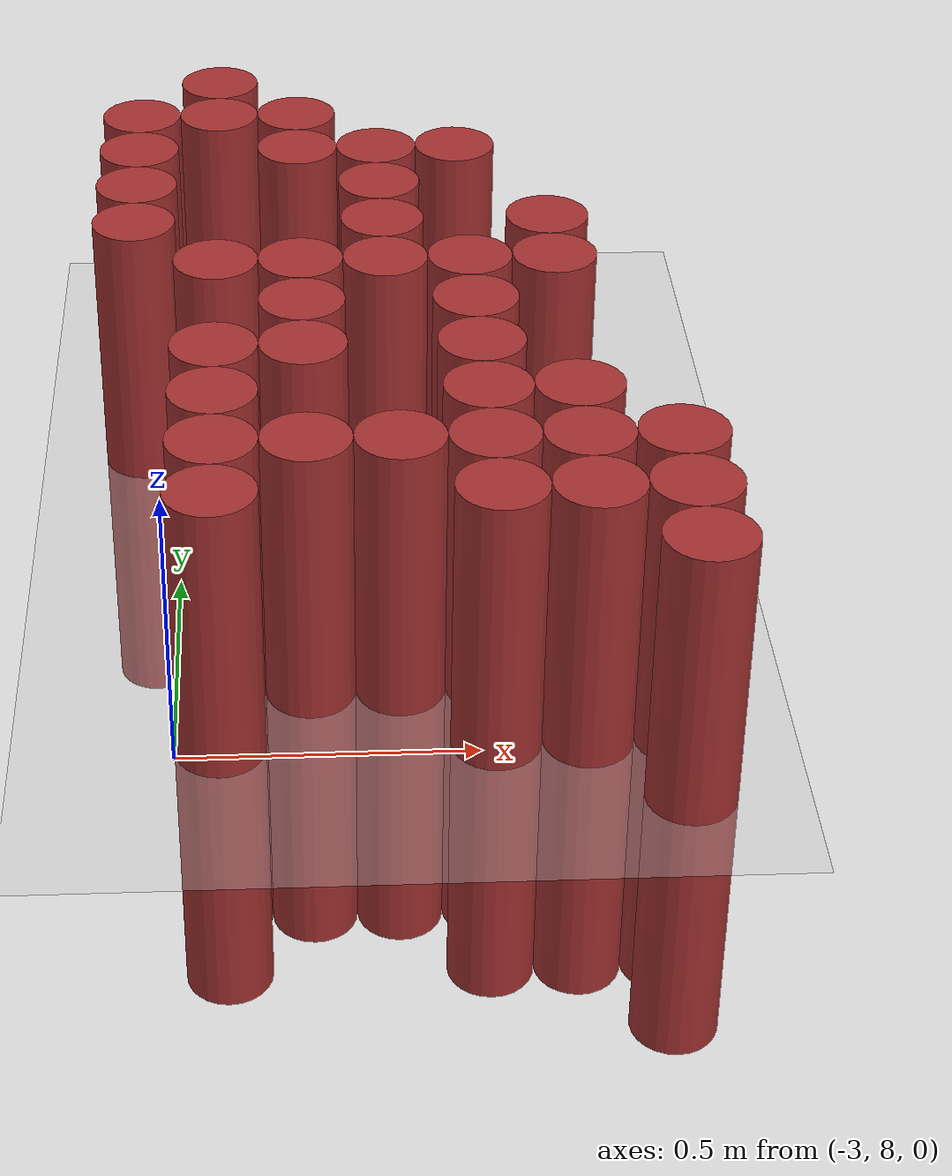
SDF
<sdf version="1.6">
 <world name="default">
  <model name="ground_plane">
   <static>1</static>
   <link name="link">
    <collision name="collision">
     <geometry><plane><normal>0 0 1</normal><size>100 100</size></plane></geometry>
     <surface><friction><ode><mu>100</mu><mu2>50</mu2></ode></friction></surface>
    </collision>
    <visual name="visual">
     <cast_shadows>0</cast_shadows>
     <geometry><plane><normal>0 0 1</normal><size>100 100</size></plane></geometry>
     <material>
      <script><uri>file://media/materials/scripts/gazebo.material</uri><name>Gazebo/Grey</name></script>
     </material>
    </visual>
   </link>
  </model>
  <model name="unit_cylinder_192">
   <static>1</static>
   <pose>-3.075000 8.925000 0.000000 0.000000 0.000000 0.000000</pose>
   <link name="link">
    <inertial>
     <mass>1</mass>
     <inertia><ixx>0.145833</ixx><ixy>0</ixy><ixz>0</ixz><iyy>0.145833</iyy><iyz>0</iyz><izz>0.125</izz></inertia>
    </inertial>
    <collision name="collision">
     <geometry><cylinder><radius>0.075000</radius><length>1</length></cylinder></geometry>
    </collision>
    <visual name="visual">
     <geometry><cylinder><radius>0.075000</radius><length>1</length></cylinder></geometry>
     <material>
      <ambient>0.648000 0.192000 0.192000 1</ambient>
      <diffuse>0.648000 0.192000 0.192000 1</diffuse>
     </material>
     <material>
      <script><name>Gazebo/Grey</name><uri>file://media/materials/scripts/gazebo.material</uri></script>
     </material>
    </visual>
    <sensor name="sensor_contact" type="contact"><contact><collision>collision</collision></contact></sensor>
   </link>
   <plugin filename="gz-sim-touchplugin-system" name="gz::sim::systems::TouchPlugin">
    <target>robot</target>
    <namespace>robot</namespace>
    <time>0.001</time>
    <enabled>true</enabled>
   </plugin>
  </model>
  <model name="unit_cylinder_193">
   <static>1</static>
   <pose>-3.075000 9.075000 0.000000 0.000000 0.000000 0.000000</pose>
   <link name="link">
    <inertial>
     <mass>1</mass>
     <inertia><ixx>0.145833</ixx><ixy>0</ixy><ixz>0</ixz><iyy>0.145833</iyy><iyz>0</iyz><izz>0.125</izz></inertia>
    </inertial>
    <collision name="collision">
     <geometry><cylinder><radius>0.075000</radius><length>1</length></cylinder></geometry>
    </collision>
    <visual name="visual">
     <geometry><cylinder><radius>0.075000</radius><length>1</length></cylinder></geometry>
     <material>
      <ambient>0.648000 0.192000 0.192000 1</ambient>
      <diffuse>0.648000 0.192000 0.192000 1</diffuse>
     </material>
     <material>
      <script><name>Gazebo/Grey</name><uri>file://media/materials/scripts/gazebo.material</uri></script>
     </material>
    </visual>
    <sensor name="sensor_contact" type="contact"><contact><collision>collision</collision></contact></sensor>
   </link>
   <plugin filename="gz-sim-touchplugin-system" name="gz::sim::systems::TouchPlugin">
    <target>robot</target>
    <namespace>robot</namespace>
    <time>0.001</time>
    <enabled>true</enabled>
   </plugin>
  </model>
  <model name="unit_cylinder_194">
   <static>1</static>
   <pose>-3.075000 9.225000 0.000000 0.000000 0.000000 0.000000</pose>
   <link name="link">
    <inertial>
     <mass>1</mass>
     <inertia><ixx>0.145833</ixx><ixy>0</ixy><ixz>0</ixz><iyy>0.145833</iyy><iyz>0</iyz><izz>0.125</izz></inertia>
    </inertial>
    <collision name="collision">
     <geometry><cylinder><radius>0.075000</radius><length>1</length></cylinder></geometry>
    </collision>
    <visual name="visual">
     <geometry><cylinder><radius>0.075000</radius><length>1</length></cylinder></geometry>
     <material>
      <ambient>0.648000 0.192000 0.192000 1</ambient>
      <diffuse>0.648000 0.192000 0.192000 1</diffuse>
     </material>
     <material>
      <script><name>Gazebo/Grey</name><uri>file://media/materials/scripts/gazebo.material</uri></script>
     </material>
    </visual>
    <sensor name="sensor_contact" type="contact"><contact><collision>collision</collision></contact></sensor>
   </link>
   <plugin filename="gz-sim-touchplugin-system" name="gz::sim::systems::TouchPlugin">
    <target>robot</target>
    <namespace>robot</namespace>
    <time>0.001</time>
    <enabled>true</enabled>
   </plugin>
  </model>
  <model name="unit_cylinder_195">
   <static>1</static>
   <pose>-3.075000 9.375000 0.000000 0.000000 0.000000 0.000000</pose>
   <link name="link">
    <inertial>
     <mass>1</mass>
     <inertia><ixx>0.145833</ixx><ixy>0</ixy><ixz>0</ixz><iyy>0.145833</iyy><iyz>0</iyz><izz>0.125</izz></inertia>
    </inertial>
    <collision name="collision">
     <geometry><cylinder><radius>0.075000</radius><length>1</length></cylinder></geometry>
    </collision>
    <visual name="visual">
     <geometry><cylinder><radius>0.075000</radius><length>1</length></cylinder></geometry>
     <material>
      <ambient>0.648000 0.192000 0.192000 1</ambient>
      <diffuse>0.648000 0.192000 0.192000 1</diffuse>
     </material>
     <material>
      <script><name>Gazebo/Grey</name><uri>file://media/materials/scripts/gazebo.material</uri></script>
     </material>
    </visual>
    <sensor name="sensor_contact" type="contact"><contact><collision>collision</collision></contact></sensor>
   </link>
   <plugin filename="gz-sim-touchplugin-system" name="gz::sim::systems::TouchPlugin">
    <target>robot</target>
    <namespace>robot</namespace>
    <time>0.001</time>
    <enabled>true</enabled>
   </plugin>
  </model>
  <model name="unit_cylinder_199">
   <static>1</static>
   <pose>-2.925000 8.025000 0.000000 0.000000 0.000000 0.000000</pose>
   <link name="link">
    <inertial>
     <mass>1</mass>
     <inertia><ixx>0.145833</ixx><ixy>0</ixy><ixz>0</ixz><iyy>0.145833</iyy><iyz>0</iyz><izz>0.125</izz></inertia>
    </inertial>
    <collision name="collision">
     <geometry><cylinder><radius>0.075000</radius><length>1</length></cylinder></geometry>
    </collision>
    <visual name="visual">
     <geometry><cylinder><radius>0.075000</radius><length>1</length></cylinder></geometry>
     <material>
      <ambient>0.648000 0.192000 0.192000 1</ambient>
      <diffuse>0.648000 0.192000 0.192000 1</diffuse>
     </material>
     <material>
      <script><name>Gazebo/Grey</name><uri>file://media/materials/scripts/gazebo.material</uri></script>
     </material>
    </visual>
    <sensor name="sensor_contact" type="contact"><contact><collision>collision</collision></contact></sensor>
   </link>
   <plugin filename="gz-sim-touchplugin-system" name="gz::sim::systems::TouchPlugin">
    <target>robot</target>
    <namespace>robot</namespace>
    <time>0.001</time>
    <enabled>true</enabled>
   </plugin>
  </model>
  <model name="unit_cylinder_200">
   <static>1</static>
   <pose>-2.925000 8.175000 0.000000 0.000000 0.000000 0.000000</pose>
   <link name="link">
    <inertial>
     <mass>1</mass>
     <inertia><ixx>0.145833</ixx><ixy>0</ixy><ixz>0</ixz><iyy>0.145833</iyy><iyz>0</iyz><izz>0.125</izz></inertia>
    </inertial>
    <collision name="collision">
     <geometry><cylinder><radius>0.075000</radius><length>1</length></cylinder></geometry>
    </collision>
    <visual name="visual">
     <geometry><cylinder><radius>0.075000</radius><length>1</length></cylinder></geometry>
     <material>
      <ambient>0.648000 0.192000 0.192000 1</ambient>
      <diffuse>0.648000 0.192000 0.192000 1</diffuse>
     </material>
     <material>
      <script><name>Gazebo/Grey</name><uri>file://media/materials/scripts/gazebo.material</uri></script>
     </material>
    </visual>
    <sensor name="sensor_contact" type="contact"><contact><collision>collision</collision></contact></sensor>
   </link>
   <plugin filename="gz-sim-touchplugin-system" name="gz::sim::systems::TouchPlugin">
    <target>robot</target>
    <namespace>robot</namespace>
    <time>0.001</time>
    <enabled>true</enabled>
   </plugin>
  </model>
  <model name="unit_cylinder_201">
   <static>1</static>
   <pose>-2.925000 8.325000 0.000000 0.000000 0.000000 0.000000</pose>
   <link name="link">
    <inertial>
     <mass>1</mass>
     <inertia><ixx>0.145833</ixx><ixy>0</ixy><ixz>0</ixz><iyy>0.145833</iyy><iyz>0</iyz><izz>0.125</izz></inertia>
    </inertial>
    <collision name="collision">
     <geometry><cylinder><radius>0.075000</radius><length>1</length></cylinder></geometry>
    </collision>
    <visual name="visual">
     <geometry><cylinder><radius>0.075000</radius><length>1</length></cylinder></geometry>
     <material>
      <ambient>0.648000 0.192000 0.192000 1</ambient>
      <diffuse>0.648000 0.192000 0.192000 1</diffuse>
     </material>
     <material>
      <script><name>Gazebo/Grey</name><uri>file://media/materials/scripts/gazebo.material</uri></script>
     </material>
    </visual>
    <sensor name="sensor_contact" type="contact"><contact><collision>collision</collision></contact></sensor>
   </link>
   <plugin filename="gz-sim-touchplugin-system" name="gz::sim::systems::TouchPlugin">
    <target>robot</target>
    <namespace>robot</namespace>
    <time>0.001</time>
    <enabled>true</enabled>
   </plugin>
  </model>
  <model name="unit_cylinder_202">
   <static>1</static>
   <pose>-2.925000 8.475000 0.000000 0.000000 0.000000 0.000000</pose>
   <link name="link">
    <inertial>
     <mass>1</mass>
     <inertia><ixx>0.145833</ixx><ixy>0</ixy><ixz>0</ixz><iyy>0.145833</iyy><iyz>0</iyz><izz>0.125</izz></inertia>
    </inertial>
    <collision name="collision">
     <geometry><cylinder><radius>0.075000</radius><length>1</length></cylinder></geometry>
    </collision>
    <visual name="visual">
     <geometry><cylinder><radius>0.075000</radius><length>1</length></cylinder></geometry>
     <material>
      <ambient>0.648000 0.192000 0.192000 1</ambient>
      <diffuse>0.648000 0.192000 0.192000 1</diffuse>
     </material>
     <material>
      <script><name>Gazebo/Grey</name><uri>file://media/materials/scripts/gazebo.material</uri></script>
     </material>
    </visual>
    <sensor name="sensor_contact" type="contact"><contact><collision>collision</collision></contact></sensor>
   </link>
   <plugin filename="gz-sim-touchplugin-system" name="gz::sim::systems::TouchPlugin">
    <target>robot</target>
    <namespace>robot</namespace>
    <time>0.001</time>
    <enabled>true</enabled>
   </plugin>
  </model>
  <model name="unit_cylinder_203">
   <static>1</static>
   <pose>-2.925000 8.775000 0.000000 0.000000 0.000000 0.000000</pose>
   <link name="link">
    <inertial>
     <mass>1</mass>
     <inertia><ixx>0.145833</ixx><ixy>0</ixy><ixz>0</ixz><iyy>0.145833</iyy><iyz>0</iyz><izz>0.125</izz></inertia>
    </inertial>
    <collision name="collision">
     <geometry><cylinder><radius>0.075000</radius><length>1</length></cylinder></geometry>
    </collision>
    <visual name="visual">
     <geometry><cylinder><radius>0.075000</radius><length>1</length></cylinder></geometry>
     <material>
      <ambient>0.648000 0.192000 0.192000 1</ambient>
      <diffuse>0.648000 0.192000 0.192000 1</diffuse>
     </material>
     <material>
      <script><name>Gazebo/Grey</name><uri>file://media/materials/scripts/gazebo.material</uri></script>
     </material>
    </visual>
    <sensor name="sensor_contact" type="contact"><contact><collision>collision</collision></contact></sensor>
   </link>
   <plugin filename="gz-sim-touchplugin-system" name="gz::sim::systems::TouchPlugin">
    <target>robot</target>
    <namespace>robot</namespace>
    <time>0.001</time>
    <enabled>true</enabled>
   </plugin>
  </model>
  <model name="unit_cylinder_204">
   <static>1</static>
   <pose>-2.925000 9.375000 0.000000 0.000000 0.000000 0.000000</pose>
   <link name="link">
    <inertial>
     <mass>1</mass>
     <inertia><ixx>0.145833</ixx><ixy>0</ixy><ixz>0</ixz><iyy>0.145833</iyy><iyz>0</iyz><izz>0.125</izz></inertia>
    </inertial>
    <collision name="collision">
     <geometry><cylinder><radius>0.075000</radius><length>1</length></cylinder></geometry>
    </collision>
    <visual name="visual">
     <geometry><cylinder><radius>0.075000</radius><length>1</length></cylinder></geometry>
     <material>
      <ambient>0.648000 0.192000 0.192000 1</ambient>
      <diffuse>0.648000 0.192000 0.192000 1</diffuse>
     </material>
     <material>
      <script><name>Gazebo/Grey</name><uri>file://media/materials/scripts/gazebo.material</uri></script>
     </material>
    </visual>
    <sensor name="sensor_contact" type="contact"><contact><collision>collision</collision></contact></sensor>
   </link>
   <plugin filename="gz-sim-touchplugin-system" name="gz::sim::systems::TouchPlugin">
    <target>robot</target>
    <namespace>robot</namespace>
    <time>0.001</time>
    <enabled>true</enabled>
   </plugin>
  </model>
  <model name="unit_cylinder_205">
   <static>1</static>
   <pose>-2.925000 9.525000 0.000000 0.000000 0.000000 0.000000</pose>
   <link name="link">
    <inertial>
     <mass>1</mass>
     <inertia><ixx>0.145833</ixx><ixy>0</ixy><ixz>0</ixz><iyy>0.145833</iyy><iyz>0</iyz><izz>0.125</izz></inertia>
    </inertial>
    <collision name="collision">
     <geometry><cylinder><radius>0.075000</radius><length>1</length></cylinder></geometry>
    </collision>
    <visual name="visual">
     <geometry><cylinder><radius>0.075000</radius><length>1</length></cylinder></geometry>
     <material>
      <ambient>0.648000 0.192000 0.192000 1</ambient>
      <diffuse>0.648000 0.192000 0.192000 1</diffuse>
     </material>
     <material>
      <script><name>Gazebo/Grey</name><uri>file://media/materials/scripts/gazebo.material</uri></script>
     </material>
    </visual>
    <sensor name="sensor_contact" type="contact"><contact><collision>collision</collision></contact></sensor>
   </link>
   <plugin filename="gz-sim-touchplugin-system" name="gz::sim::systems::TouchPlugin">
    <target>robot</target>
    <namespace>robot</namespace>
    <time>0.001</time>
    <enabled>true</enabled>
   </plugin>
  </model>
  <model name="unit_cylinder_208">
   <static>1</static>
   <pose>-2.775000 8.175000 0.000000 0.000000 0.000000 0.000000</pose>
   <link name="link">
    <inertial>
     <mass>1</mass>
     <inertia><ixx>0.145833</ixx><ixy>0</ixy><ixz>0</ixz><iyy>0.145833</iyy><iyz>0</iyz><izz>0.125</izz></inertia>
    </inertial>
    <collision name="collision">
     <geometry><cylinder><radius>0.075000</radius><length>1</length></cylinder></geometry>
    </collision>
    <visual name="visual">
     <geometry><cylinder><radius>0.075000</radius><length>1</length></cylinder></geometry>
     <material>
      <ambient>0.648000 0.192000 0.192000 1</ambient>
      <diffuse>0.648000 0.192000 0.192000 1</diffuse>
     </material>
     <material>
      <script><name>Gazebo/Grey</name><uri>file://media/materials/scripts/gazebo.material</uri></script>
     </material>
    </visual>
    <sensor name="sensor_contact" type="contact"><contact><collision>collision</collision></contact></sensor>
   </link>
   <plugin filename="gz-sim-touchplugin-system" name="gz::sim::systems::TouchPlugin">
    <target>robot</target>
    <namespace>robot</namespace>
    <time>0.001</time>
    <enabled>true</enabled>
   </plugin>
  </model>
  <model name="unit_cylinder_209">
   <static>1</static>
   <pose>-2.775000 8.475000 0.000000 0.000000 0.000000 0.000000</pose>
   <link name="link">
    <inertial>
     <mass>1</mass>
     <inertia><ixx>0.145833</ixx><ixy>0</ixy><ixz>0</ixz><iyy>0.145833</iyy><iyz>0</iyz><izz>0.125</izz></inertia>
    </inertial>
    <collision name="collision">
     <geometry><cylinder><radius>0.075000</radius><length>1</length></cylinder></geometry>
    </collision>
    <visual name="visual">
     <geometry><cylinder><radius>0.075000</radius><length>1</length></cylinder></geometry>
     <material>
      <ambient>0.648000 0.192000 0.192000 1</ambient>
      <diffuse>0.648000 0.192000 0.192000 1</diffuse>
     </material>
     <material>
      <script><name>Gazebo/Grey</name><uri>file://media/materials/scripts/gazebo.material</uri></script>
     </material>
    </visual>
    <sensor name="sensor_contact" type="contact"><contact><collision>collision</collision></contact></sensor>
   </link>
   <plugin filename="gz-sim-touchplugin-system" name="gz::sim::systems::TouchPlugin">
    <target>robot</target>
    <namespace>robot</namespace>
    <time>0.001</time>
    <enabled>true</enabled>
   </plugin>
  </model>
  <model name="unit_cylinder_210">
   <static>1</static>
   <pose>-2.775000 8.625000 0.000000 0.000000 0.000000 0.000000</pose>
   <link name="link">
    <inertial>
     <mass>1</mass>
     <inertia><ixx>0.145833</ixx><ixy>0</ixy><ixz>0</ixz><iyy>0.145833</iyy><iyz>0</iyz><izz>0.125</izz></inertia>
    </inertial>
    <collision name="collision">
     <geometry><cylinder><radius>0.075000</radius><length>1</length></cylinder></geometry>
    </collision>
    <visual name="visual">
     <geometry><cylinder><radius>0.075000</radius><length>1</length></cylinder></geometry>
     <material>
      <ambient>0.648000 0.192000 0.192000 1</ambient>
      <diffuse>0.648000 0.192000 0.192000 1</diffuse>
     </material>
     <material>
      <script><name>Gazebo/Grey</name><uri>file://media/materials/scripts/gazebo.material</uri></script>
     </material>
    </visual>
    <sensor name="sensor_contact" type="contact"><contact><collision>collision</collision></contact></sensor>
   </link>
   <plugin filename="gz-sim-touchplugin-system" name="gz::sim::systems::TouchPlugin">
    <target>robot</target>
    <namespace>robot</namespace>
    <time>0.001</time>
    <enabled>true</enabled>
   </plugin>
  </model>
  <model name="unit_cylinder_211">
   <static>1</static>
   <pose>-2.775000 8.775000 0.000000 0.000000 0.000000 0.000000</pose>
   <link name="link">
    <inertial>
     <mass>1</mass>
     <inertia><ixx>0.145833</ixx><ixy>0</ixy><ixz>0</ixz><iyy>0.145833</iyy><iyz>0</iyz><izz>0.125</izz></inertia>
    </inertial>
    <collision name="collision">
     <geometry><cylinder><radius>0.075000</radius><length>1</length></cylinder></geometry>
    </collision>
    <visual name="visual">
     <geometry><cylinder><radius>0.075000</radius><length>1</length></cylinder></geometry>
     <material>
      <ambient>0.648000 0.192000 0.192000 1</ambient>
      <diffuse>0.648000 0.192000 0.192000 1</diffuse>
     </material>
     <material>
      <script><name>Gazebo/Grey</name><uri>file://media/materials/scripts/gazebo.material</uri></script>
     </material>
    </visual>
    <sensor name="sensor_contact" type="contact"><contact><collision>collision</collision></contact></sensor>
   </link>
   <plugin filename="gz-sim-touchplugin-system" name="gz::sim::systems::TouchPlugin">
    <target>robot</target>
    <namespace>robot</namespace>
    <time>0.001</time>
    <enabled>true</enabled>
   </plugin>
  </model>
  <model name="unit_cylinder_212">
   <static>1</static>
   <pose>-2.775000 9.225000 0.000000 0.000000 0.000000 0.000000</pose>
   <link name="link">
    <inertial>
     <mass>1</mass>
     <inertia><ixx>0.145833</ixx><ixy>0</ixy><ixz>0</ixz><iyy>0.145833</iyy><iyz>0</iyz><izz>0.125</izz></inertia>
    </inertial>
    <collision name="collision">
     <geometry><cylinder><radius>0.075000</radius><length>1</length></cylinder></geometry>
    </collision>
    <visual name="visual">
     <geometry><cylinder><radius>0.075000</radius><length>1</length></cylinder></geometry>
     <material>
      <ambient>0.648000 0.192000 0.192000 1</ambient>
      <diffuse>0.648000 0.192000 0.192000 1</diffuse>
     </material>
     <material>
      <script><name>Gazebo/Grey</name><uri>file://media/materials/scripts/gazebo.material</uri></script>
     </material>
    </visual>
    <sensor name="sensor_contact" type="contact"><contact><collision>collision</collision></contact></sensor>
   </link>
   <plugin filename="gz-sim-touchplugin-system" name="gz::sim::systems::TouchPlugin">
    <target>robot</target>
    <namespace>robot</namespace>
    <time>0.001</time>
    <enabled>true</enabled>
   </plugin>
  </model>
  <model name="unit_cylinder_213">
   <static>1</static>
   <pose>-2.775000 9.375000 0.000000 0.000000 0.000000 0.000000</pose>
   <link name="link">
    <inertial>
     <mass>1</mass>
     <inertia><ixx>0.145833</ixx><ixy>0</ixy><ixz>0</ixz><iyy>0.145833</iyy><iyz>0</iyz><izz>0.125</izz></inertia>
    </inertial>
    <collision name="collision">
     <geometry><cylinder><radius>0.075000</radius><length>1</length></cylinder></geometry>
    </collision>
    <visual name="visual">
     <geometry><cylinder><radius>0.075000</radius><length>1</length></cylinder></geometry>
     <material>
      <ambient>0.648000 0.192000 0.192000 1</ambient>
      <diffuse>0.648000 0.192000 0.192000 1</diffuse>
     </material>
     <material>
      <script><name>Gazebo/Grey</name><uri>file://media/materials/scripts/gazebo.material</uri></script>
     </material>
    </visual>
    <sensor name="sensor_contact" type="contact"><contact><collision>collision</collision></contact></sensor>
   </link>
   <plugin filename="gz-sim-touchplugin-system" name="gz::sim::systems::TouchPlugin">
    <target>robot</target>
    <namespace>robot</namespace>
    <time>0.001</time>
    <enabled>true</enabled>
   </plugin>
  </model>
  <model name="unit_cylinder_215">
   <static>1</static>
   <pose>-2.625000 8.175000 0.000000 0.000000 0.000000 0.000000</pose>
   <link name="link">
    <inertial>
     <mass>1</mass>
     <inertia><ixx>0.145833</ixx><ixy>0</ixy><ixz>0</ixz><iyy>0.145833</iyy><iyz>0</iyz><izz>0.125</izz></inertia>
    </inertial>
    <collision name="collision">
     <geometry><cylinder><radius>0.075000</radius><length>1</length></cylinder></geometry>
    </collision>
    <visual name="visual">
     <geometry><cylinder><radius>0.075000</radius><length>1</length></cylinder></geometry>
     <material>
      <ambient>0.648000 0.192000 0.192000 1</ambient>
      <diffuse>0.648000 0.192000 0.192000 1</diffuse>
     </material>
     <material>
      <script><name>Gazebo/Grey</name><uri>file://media/materials/scripts/gazebo.material</uri></script>
     </material>
    </visual>
    <sensor name="sensor_contact" type="contact"><contact><collision>collision</collision></contact></sensor>
   </link>
   <plugin filename="gz-sim-touchplugin-system" name="gz::sim::systems::TouchPlugin">
    <target>robot</target>
    <namespace>robot</namespace>
    <time>0.001</time>
    <enabled>true</enabled>
   </plugin>
  </model>
  <model name="unit_cylinder_216">
   <static>1</static>
   <pose>-2.625000 8.775000 0.000000 0.000000 0.000000 0.000000</pose>
   <link name="link">
    <inertial>
     <mass>1</mass>
     <inertia><ixx>0.145833</ixx><ixy>0</ixy><ixz>0</ixz><iyy>0.145833</iyy><iyz>0</iyz><izz>0.125</izz></inertia>
    </inertial>
    <collision name="collision">
     <geometry><cylinder><radius>0.075000</radius><length>1</length></cylinder></geometry>
    </collision>
    <visual name="visual">
     <geometry><cylinder><radius>0.075000</radius><length>1</length></cylinder></geometry>
     <material>
      <ambient>0.648000 0.192000 0.192000 1</ambient>
      <diffuse>0.648000 0.192000 0.192000 1</diffuse>
     </material>
     <material>
      <script><name>Gazebo/Grey</name><uri>file://media/materials/scripts/gazebo.material</uri></script>
     </material>
    </visual>
    <sensor name="sensor_contact" type="contact"><contact><collision>collision</collision></contact></sensor>
   </link>
   <plugin filename="gz-sim-touchplugin-system" name="gz::sim::systems::TouchPlugin">
    <target>robot</target>
    <namespace>robot</namespace>
    <time>0.001</time>
    <enabled>true</enabled>
   </plugin>
  </model>
  <model name="unit_cylinder_217">
   <static>1</static>
   <pose>-2.625000 8.925000 0.000000 0.000000 0.000000 0.000000</pose>
   <link name="link">
    <inertial>
     <mass>1</mass>
     <inertia><ixx>0.145833</ixx><ixy>0</ixy><ixz>0</ixz><iyy>0.145833</iyy><iyz>0</iyz><izz>0.125</izz></inertia>
    </inertial>
    <collision name="collision">
     <geometry><cylinder><radius>0.075000</radius><length>1</length></cylinder></geometry>
    </collision>
    <visual name="visual">
     <geometry><cylinder><radius>0.075000</radius><length>1</length></cylinder></geometry>
     <material>
      <ambient>0.648000 0.192000 0.192000 1</ambient>
      <diffuse>0.648000 0.192000 0.192000 1</diffuse>
     </material>
     <material>
      <script><name>Gazebo/Grey</name><uri>file://media/materials/scripts/gazebo.material</uri></script>
     </material>
    </visual>
    <sensor name="sensor_contact" type="contact"><contact><collision>collision</collision></contact></sensor>
   </link>
   <plugin filename="gz-sim-touchplugin-system" name="gz::sim::systems::TouchPlugin">
    <target>robot</target>
    <namespace>robot</namespace>
    <time>0.001</time>
    <enabled>true</enabled>
   </plugin>
  </model>
  <model name="unit_cylinder_218">
   <static>1</static>
   <pose>-2.625000 9.075000 0.000000 0.000000 0.000000 0.000000</pose>
   <link name="link">
    <inertial>
     <mass>1</mass>
     <inertia><ixx>0.145833</ixx><ixy>0</ixy><ixz>0</ixz><iyy>0.145833</iyy><iyz>0</iyz><izz>0.125</izz></inertia>
    </inertial>
    <collision name="collision">
     <geometry><cylinder><radius>0.075000</radius><length>1</length></cylinder></geometry>
    </collision>
    <visual name="visual">
     <geometry><cylinder><radius>0.075000</radius><length>1</length></cylinder></geometry>
     <material>
      <ambient>0.648000 0.192000 0.192000 1</ambient>
      <diffuse>0.648000 0.192000 0.192000 1</diffuse>
     </material>
     <material>
      <script><name>Gazebo/Grey</name><uri>file://media/materials/scripts/gazebo.material</uri></script>
     </material>
    </visual>
    <sensor name="sensor_contact" type="contact"><contact><collision>collision</collision></contact></sensor>
   </link>
   <plugin filename="gz-sim-touchplugin-system" name="gz::sim::systems::TouchPlugin">
    <target>robot</target>
    <namespace>robot</namespace>
    <time>0.001</time>
    <enabled>true</enabled>
   </plugin>
  </model>
  <model name="unit_cylinder_219">
   <static>1</static>
   <pose>-2.625000 9.225000 0.000000 0.000000 0.000000 0.000000</pose>
   <link name="link">
    <inertial>
     <mass>1</mass>
     <inertia><ixx>0.145833</ixx><ixy>0</ixy><ixz>0</ixz><iyy>0.145833</iyy><iyz>0</iyz><izz>0.125</izz></inertia>
    </inertial>
    <collision name="collision">
     <geometry><cylinder><radius>0.075000</radius><length>1</length></cylinder></geometry>
    </collision>
    <visual name="visual">
     <geometry><cylinder><radius>0.075000</radius><length>1</length></cylinder></geometry>
     <material>
      <ambient>0.648000 0.192000 0.192000 1</ambient>
      <diffuse>0.648000 0.192000 0.192000 1</diffuse>
     </material>
     <material>
      <script><name>Gazebo/Grey</name><uri>file://media/materials/scripts/gazebo.material</uri></script>
     </material>
    </visual>
    <sensor name="sensor_contact" type="contact"><contact><collision>collision</collision></contact></sensor>
   </link>
   <plugin filename="gz-sim-touchplugin-system" name="gz::sim::systems::TouchPlugin">
    <target>robot</target>
    <namespace>robot</namespace>
    <time>0.001</time>
    <enabled>true</enabled>
   </plugin>
  </model>
  <model name="unit_cylinder_221">
   <static>1</static>
   <pose>-2.475000 8.025000 0.000000 0.000000 0.000000 0.000000</pose>
   <link name="link">
    <inertial>
     <mass>1</mass>
     <inertia><ixx>0.145833</ixx><ixy>0</ixy><ixz>0</ixz><iyy>0.145833</iyy><iyz>0</iyz><izz>0.125</izz></inertia>
    </inertial>
    <collision name="collision">
     <geometry><cylinder><radius>0.075000</radius><length>1</length></cylinder></geometry>
    </collision>
    <visual name="visual">
     <geometry><cylinder><radius>0.075000</radius><length>1</length></cylinder></geometry>
     <material>
      <ambient>0.648000 0.192000 0.192000 1</ambient>
      <diffuse>0.648000 0.192000 0.192000 1</diffuse>
     </material>
     <material>
      <script><name>Gazebo/Grey</name><uri>file://media/materials/scripts/gazebo.material</uri></script>
     </material>
    </visual>
    <sensor name="sensor_contact" type="contact"><contact><collision>collision</collision></contact></sensor>
   </link>
   <plugin filename="gz-sim-touchplugin-system" name="gz::sim::systems::TouchPlugin">
    <target>robot</target>
    <namespace>robot</namespace>
    <time>0.001</time>
    <enabled>true</enabled>
   </plugin>
  </model>
  <model name="unit_cylinder_222">
   <static>1</static>
   <pose>-2.475000 8.175000 0.000000 0.000000 0.000000 0.000000</pose>
   <link name="link">
    <inertial>
     <mass>1</mass>
     <inertia><ixx>0.145833</ixx><ixy>0</ixy><ixz>0</ixz><iyy>0.145833</iyy><iyz>0</iyz><izz>0.125</izz></inertia>
    </inertial>
    <collision name="collision">
     <geometry><cylinder><radius>0.075000</radius><length>1</length></cylinder></geometry>
    </collision>
    <visual name="visual">
     <geometry><cylinder><radius>0.075000</radius><length>1</length></cylinder></geometry>
     <material>
      <ambient>0.648000 0.192000 0.192000 1</ambient>
      <diffuse>0.648000 0.192000 0.192000 1</diffuse>
     </material>
     <material>
      <script><name>Gazebo/Grey</name><uri>file://media/materials/scripts/gazebo.material</uri></script>
     </material>
    </visual>
    <sensor name="sensor_contact" type="contact"><contact><collision>collision</collision></contact></sensor>
   </link>
   <plugin filename="gz-sim-touchplugin-system" name="gz::sim::systems::TouchPlugin">
    <target>robot</target>
    <namespace>robot</namespace>
    <time>0.001</time>
    <enabled>true</enabled>
   </plugin>
  </model>
  <model name="unit_cylinder_223">
   <static>1</static>
   <pose>-2.475000 8.325000 0.000000 0.000000 0.000000 0.000000</pose>
   <link name="link">
    <inertial>
     <mass>1</mass>
     <inertia><ixx>0.145833</ixx><ixy>0</ixy><ixz>0</ixz><iyy>0.145833</iyy><iyz>0</iyz><izz>0.125</izz></inertia>
    </inertial>
    <collision name="collision">
     <geometry><cylinder><radius>0.075000</radius><length>1</length></cylinder></geometry>
    </collision>
    <visual name="visual">
     <geometry><cylinder><radius>0.075000</radius><length>1</length></cylinder></geometry>
     <material>
      <ambient>0.648000 0.192000 0.192000 1</ambient>
      <diffuse>0.648000 0.192000 0.192000 1</diffuse>
     </material>
     <material>
      <script><name>Gazebo/Grey</name><uri>file://media/materials/scripts/gazebo.material</uri></script>
     </material>
    </visual>
    <sensor name="sensor_contact" type="contact"><contact><collision>collision</collision></contact></sensor>
   </link>
   <plugin filename="gz-sim-touchplugin-system" name="gz::sim::systems::TouchPlugin">
    <target>robot</target>
    <namespace>robot</namespace>
    <time>0.001</time>
    <enabled>true</enabled>
   </plugin>
  </model>
  <model name="unit_cylinder_224">
   <static>1</static>
   <pose>-2.475000 8.475000 0.000000 0.000000 0.000000 0.000000</pose>
   <link name="link">
    <inertial>
     <mass>1</mass>
     <inertia><ixx>0.145833</ixx><ixy>0</ixy><ixz>0</ixz><iyy>0.145833</iyy><iyz>0</iyz><izz>0.125</izz></inertia>
    </inertial>
    <collision name="collision">
     <geometry><cylinder><radius>0.075000</radius><length>1</length></cylinder></geometry>
    </collision>
    <visual name="visual">
     <geometry><cylinder><radius>0.075000</radius><length>1</length></cylinder></geometry>
     <material>
      <ambient>0.648000 0.192000 0.192000 1</ambient>
      <diffuse>0.648000 0.192000 0.192000 1</diffuse>
     </material>
     <material>
      <script><name>Gazebo/Grey</name><uri>file://media/materials/scripts/gazebo.material</uri></script>
     </material>
    </visual>
    <sensor name="sensor_contact" type="contact"><contact><collision>collision</collision></contact></sensor>
   </link>
   <plugin filename="gz-sim-touchplugin-system" name="gz::sim::systems::TouchPlugin">
    <target>robot</target>
    <namespace>robot</namespace>
    <time>0.001</time>
    <enabled>true</enabled>
   </plugin>
  </model>
  <model name="unit_cylinder_225">
   <static>1</static>
   <pose>-2.475000 8.625000 0.000000 0.000000 0.000000 0.000000</pose>
   <link name="link">
    <inertial>
     <mass>1</mass>
     <inertia><ixx>0.145833</ixx><ixy>0</ixy><ixz>0</ixz><iyy>0.145833</iyy><iyz>0</iyz><izz>0.125</izz></inertia>
    </inertial>
    <collision name="collision">
     <geometry><cylinder><radius>0.075000</radius><length>1</length></cylinder></geometry>
    </collision>
    <visual name="visual">
     <geometry><cylinder><radius>0.075000</radius><length>1</length></cylinder></geometry>
     <material>
      <ambient>0.648000 0.192000 0.192000 1</ambient>
      <diffuse>0.648000 0.192000 0.192000 1</diffuse>
     </material>
     <material>
      <script><name>Gazebo/Grey</name><uri>file://media/materials/scripts/gazebo.material</uri></script>
     </material>
    </visual>
    <sensor name="sensor_contact" type="contact"><contact><collision>collision</collision></contact></sensor>
   </link>
   <plugin filename="gz-sim-touchplugin-system" name="gz::sim::systems::TouchPlugin">
    <target>robot</target>
    <namespace>robot</namespace>
    <time>0.001</time>
    <enabled>true</enabled>
   </plugin>
  </model>
  <model name="unit_cylinder_226">
   <static>1</static>
   <pose>-2.475000 8.775000 0.000000 0.000000 0.000000 0.000000</pose>
   <link name="link">
    <inertial>
     <mass>1</mass>
     <inertia><ixx>0.145833</ixx><ixy>0</ixy><ixz>0</ixz><iyy>0.145833</iyy><iyz>0</iyz><izz>0.125</izz></inertia>
    </inertial>
    <collision name="collision">
     <geometry><cylinder><radius>0.075000</radius><length>1</length></cylinder></geometry>
    </collision>
    <visual name="visual">
     <geometry><cylinder><radius>0.075000</radius><length>1</length></cylinder></geometry>
     <material>
      <ambient>0.648000 0.192000 0.192000 1</ambient>
      <diffuse>0.648000 0.192000 0.192000 1</diffuse>
     </material>
     <material>
      <script><name>Gazebo/Grey</name><uri>file://media/materials/scripts/gazebo.material</uri></script>
     </material>
    </visual>
    <sensor name="sensor_contact" type="contact"><contact><collision>collision</collision></contact></sensor>
   </link>
   <plugin filename="gz-sim-touchplugin-system" name="gz::sim::systems::TouchPlugin">
    <target>robot</target>
    <namespace>robot</namespace>
    <time>0.001</time>
    <enabled>true</enabled>
   </plugin>
  </model>
  <model name="unit_cylinder_227">
   <static>1</static>
   <pose>-2.475000 9.225000 0.000000 0.000000 0.000000 0.000000</pose>
   <link name="link">
    <inertial>
     <mass>1</mass>
     <inertia><ixx>0.145833</ixx><ixy>0</ixy><ixz>0</ixz><iyy>0.145833</iyy><iyz>0</iyz><izz>0.125</izz></inertia>
    </inertial>
    <collision name="collision">
     <geometry><cylinder><radius>0.075000</radius><length>1</length></cylinder></geometry>
    </collision>
    <visual name="visual">
     <geometry><cylinder><radius>0.075000</radius><length>1</length></cylinder></geometry>
     <material>
      <ambient>0.648000 0.192000 0.192000 1</ambient>
      <diffuse>0.648000 0.192000 0.192000 1</diffuse>
     </material>
     <material>
      <script><name>Gazebo/Grey</name><uri>file://media/materials/scripts/gazebo.material</uri></script>
     </material>
    </visual>
    <sensor name="sensor_contact" type="contact"><contact><collision>collision</collision></contact></sensor>
   </link>
   <plugin filename="gz-sim-touchplugin-system" name="gz::sim::systems::TouchPlugin">
    <target>robot</target>
    <namespace>robot</namespace>
    <time>0.001</time>
    <enabled>true</enabled>
   </plugin>
  </model>
  <model name="unit_cylinder_231">
   <static>1</static>
   <pose>-2.325000 8.025000 0.000000 0.000000 0.000000 0.000000</pose>
   <link name="link">
    <inertial>
     <mass>1</mass>
     <inertia><ixx>0.145833</ixx><ixy>0</ixy><ixz>0</ixz><iyy>0.145833</iyy><iyz>0</iyz><izz>0.125</izz></inertia>
    </inertial>
    <collision name="collision">
     <geometry><cylinder><radius>0.075000</radius><length>1</length></cylinder></geometry>
    </collision>
    <visual name="visual">
     <geometry><cylinder><radius>0.075000</radius><length>1</length></cylinder></geometry>
     <material>
      <ambient>0.648000 0.192000 0.192000 1</ambient>
      <diffuse>0.648000 0.192000 0.192000 1</diffuse>
     </material>
     <material>
      <script><name>Gazebo/Grey</name><uri>file://media/materials/scripts/gazebo.material</uri></script>
     </material>
    </visual>
    <sensor name="sensor_contact" type="contact"><contact><collision>collision</collision></contact></sensor>
   </link>
   <plugin filename="gz-sim-touchplugin-system" name="gz::sim::systems::TouchPlugin">
    <target>robot</target>
    <namespace>robot</namespace>
    <time>0.001</time>
    <enabled>true</enabled>
   </plugin>
  </model>
  <model name="unit_cylinder_232">
   <static>1</static>
   <pose>-2.325000 8.175000 0.000000 0.000000 0.000000 0.000000</pose>
   <link name="link">
    <inertial>
     <mass>1</mass>
     <inertia><ixx>0.145833</ixx><ixy>0</ixy><ixz>0</ixz><iyy>0.145833</iyy><iyz>0</iyz><izz>0.125</izz></inertia>
    </inertial>
    <collision name="collision">
     <geometry><cylinder><radius>0.075000</radius><length>1</length></cylinder></geometry>
    </collision>
    <visual name="visual">
     <geometry><cylinder><radius>0.075000</radius><length>1</length></cylinder></geometry>
     <material>
      <ambient>0.648000 0.192000 0.192000 1</ambient>
      <diffuse>0.648000 0.192000 0.192000 1</diffuse>
     </material>
     <material>
      <script><name>Gazebo/Grey</name><uri>file://media/materials/scripts/gazebo.material</uri></script>
     </material>
    </visual>
    <sensor name="sensor_contact" type="contact"><contact><collision>collision</collision></contact></sensor>
   </link>
   <plugin filename="gz-sim-touchplugin-system" name="gz::sim::systems::TouchPlugin">
    <target>robot</target>
    <namespace>robot</namespace>
    <time>0.001</time>
    <enabled>true</enabled>
   </plugin>
  </model>
  <model name="unit_cylinder_233">
   <static>1</static>
   <pose>-2.325000 8.325000 0.000000 0.000000 0.000000 0.000000</pose>
   <link name="link">
    <inertial>
     <mass>1</mass>
     <inertia><ixx>0.145833</ixx><ixy>0</ixy><ixz>0</ixz><iyy>0.145833</iyy><iyz>0</iyz><izz>0.125</izz></inertia>
    </inertial>
    <collision name="collision">
     <geometry><cylinder><radius>0.075000</radius><length>1</length></cylinder></geometry>
    </collision>
    <visual name="visual">
     <geometry><cylinder><radius>0.075000</radius><length>1</length></cylinder></geometry>
     <material>
      <ambient>0.648000 0.192000 0.192000 1</ambient>
      <diffuse>0.648000 0.192000 0.192000 1</diffuse>
     </material>
     <material>
      <script><name>Gazebo/Grey</name><uri>file://media/materials/scripts/gazebo.material</uri></script>
     </material>
    </visual>
    <sensor name="sensor_contact" type="contact"><contact><collision>collision</collision></contact></sensor>
   </link>
   <plugin filename="gz-sim-touchplugin-system" name="gz::sim::systems::TouchPlugin">
    <target>robot</target>
    <namespace>robot</namespace>
    <time>0.001</time>
    <enabled>true</enabled>
   </plugin>
  </model>
  <model name="unit_cylinder_234">
   <static>1</static>
   <pose>-2.325000 8.775000 0.000000 0.000000 0.000000 0.000000</pose>
   <link name="link">
    <inertial>
     <mass>1</mass>
     <inertia><ixx>0.145833</ixx><ixy>0</ixy><ixz>0</ixz><iyy>0.145833</iyy><iyz>0</iyz><izz>0.125</izz></inertia>
    </inertial>
    <collision name="collision">
     <geometry><cylinder><radius>0.075000</radius><length>1</length></cylinder></geometry>
    </collision>
    <visual name="visual">
     <geometry><cylinder><radius>0.075000</radius><length>1</length></cylinder></geometry>
     <material>
      <ambient>0.648000 0.192000 0.192000 1</ambient>
      <diffuse>0.648000 0.192000 0.192000 1</diffuse>
     </material>
     <material>
      <script><name>Gazebo/Grey</name><uri>file://media/materials/scripts/gazebo.material</uri></script>
     </material>
    </visual>
    <sensor name="sensor_contact" type="contact"><contact><collision>collision</collision></contact></sensor>
   </link>
   <plugin filename="gz-sim-touchplugin-system" name="gz::sim::systems::TouchPlugin">
    <target>robot</target>
    <namespace>robot</namespace>
    <time>0.001</time>
    <enabled>true</enabled>
   </plugin>
  </model>
  <model name="unit_cylinder_235">
   <static>1</static>
   <pose>-2.325000 8.925000 0.000000 0.000000 0.000000 0.000000</pose>
   <link name="link">
    <inertial>
     <mass>1</mass>
     <inertia><ixx>0.145833</ixx><ixy>0</ixy><ixz>0</ixz><iyy>0.145833</iyy><iyz>0</iyz><izz>0.125</izz></inertia>
    </inertial>
    <collision name="collision">
     <geometry><cylinder><radius>0.075000</radius><length>1</length></cylinder></geometry>
    </collision>
    <visual name="visual">
     <geometry><cylinder><radius>0.075000</radius><length>1</length></cylinder></geometry>
     <material>
      <ambient>0.648000 0.192000 0.192000 1</ambient>
      <diffuse>0.648000 0.192000 0.192000 1</diffuse>
     </material>
     <material>
      <script><name>Gazebo/Grey</name><uri>file://media/materials/scripts/gazebo.material</uri></script>
     </material>
    </visual>
    <sensor name="sensor_contact" type="contact"><contact><collision>collision</collision></contact></sensor>
   </link>
   <plugin filename="gz-sim-touchplugin-system" name="gz::sim::systems::TouchPlugin">
    <target>robot</target>
    <namespace>robot</namespace>
    <time>0.001</time>
    <enabled>true</enabled>
   </plugin>
  </model>
  <model name="unit_cylinder_236">
   <static>1</static>
   <pose>-2.175000 7.875000 0.000000 0.000000 0.000000 0.000000</pose>
   <link name="link">
    <inertial>
     <mass>1</mass>
     <inertia><ixx>0.145833</ixx><ixy>0</ixy><ixz>0</ixz><iyy>0.145833</iyy><iyz>0</iyz><izz>0.125</izz></inertia>
    </inertial>
    <collision name="collision">
     <geometry><cylinder><radius>0.075000</radius><length>1</length></cylinder></geometry>
    </collision>
    <visual name="visual">
     <geometry><cylinder><radius>0.075000</radius><length>1</length></cylinder></geometry>
     <material>
      <ambient>0.648000 0.192000 0.192000 1</ambient>
      <diffuse>0.648000 0.192000 0.192000 1</diffuse>
     </material>
     <material>
      <script><name>Gazebo/Grey</name><uri>file://media/materials/scripts/gazebo.material</uri></script>
     </material>
    </visual>
    <sensor name="sensor_contact" type="contact"><contact><collision>collision</collision></contact></sensor>
   </link>
   <plugin filename="gz-sim-touchplugin-system" name="gz::sim::systems::TouchPlugin">
    <target>robot</target>
    <namespace>robot</namespace>
    <time>0.001</time>
    <enabled>true</enabled>
   </plugin>
  </model>
  <model name="unit_cylinder_237">
   <static>1</static>
   <pose>-2.175000 8.025000 0.000000 0.000000 0.000000 0.000000</pose>
   <link name="link">
    <inertial>
     <mass>1</mass>
     <inertia><ixx>0.145833</ixx><ixy>0</ixy><ixz>0</ixz><iyy>0.145833</iyy><iyz>0</iyz><izz>0.125</izz></inertia>
    </inertial>
    <collision name="collision">
     <geometry><cylinder><radius>0.075000</radius><length>1</length></cylinder></geometry>
    </collision>
    <visual name="visual">
     <geometry><cylinder><radius>0.075000</radius><length>1</length></cylinder></geometry>
     <material>
      <ambient>0.648000 0.192000 0.192000 1</ambient>
      <diffuse>0.648000 0.192000 0.192000 1</diffuse>
     </material>
     <material>
      <script><name>Gazebo/Grey</name><uri>file://media/materials/scripts/gazebo.material</uri></script>
     </material>
    </visual>
    <sensor name="sensor_contact" type="contact"><contact><collision>collision</collision></contact></sensor>
   </link>
   <plugin filename="gz-sim-touchplugin-system" name="gz::sim::systems::TouchPlugin">
    <target>robot</target>
    <namespace>robot</namespace>
    <time>0.001</time>
    <enabled>true</enabled>
   </plugin>
  </model>
  <model name="unit_cylinder_238">
   <static>1</static>
   <pose>-2.175000 8.175000 0.000000 0.000000 0.000000 0.000000</pose>
   <link name="link">
    <inertial>
     <mass>1</mass>
     <inertia><ixx>0.145833</ixx><ixy>0</ixy><ixz>0</ixz><iyy>0.145833</iyy><iyz>0</iyz><izz>0.125</izz></inertia>
    </inertial>
    <collision name="collision">
     <geometry><cylinder><radius>0.075000</radius><length>1</length></cylinder></geometry>
    </collision>
    <visual name="visual">
     <geometry><cylinder><radius>0.075000</radius><length>1</length></cylinder></geometry>
     <material>
      <ambient>0.648000 0.192000 0.192000 1</ambient>
      <diffuse>0.648000 0.192000 0.192000 1</diffuse>
     </material>
     <material>
      <script><name>Gazebo/Grey</name><uri>file://media/materials/scripts/gazebo.material</uri></script>
     </material>
    </visual>
    <sensor name="sensor_contact" type="contact"><contact><collision>collision</collision></contact></sensor>
   </link>
   <plugin filename="gz-sim-touchplugin-system" name="gz::sim::systems::TouchPlugin">
    <target>robot</target>
    <namespace>robot</namespace>
    <time>0.001</time>
    <enabled>true</enabled>
   </plugin>
  </model>
 </world>
</sdf>
